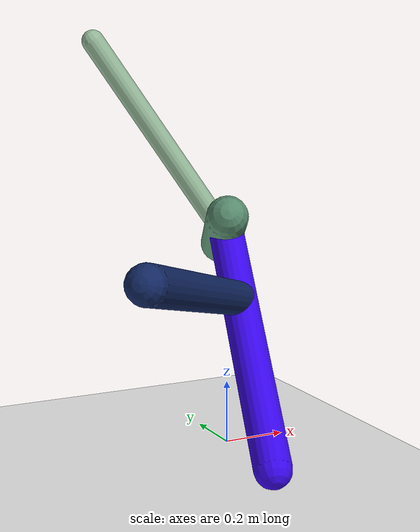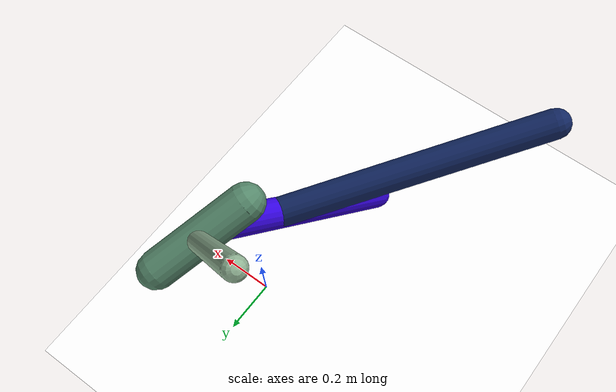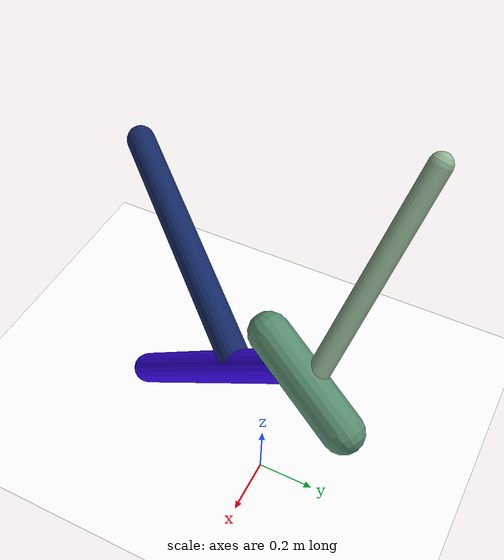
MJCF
<mujoco model="morphology">
  <option timestep="0.01"/>
  <default>
    <default class="/"/>
    <default class="0/"/>
    <default class="0/1/"/>
    <default class="0/2/"/>
    <default class="0/2/3/"/>
  </default>
  <asset>
    <texture name="texplane" type="2d" builtin="checker" rgb1="0.10000000000000001 0.20000000000000001 0.29999999999999999" rgb2="0.20000000000000001 0.29999999999999999 0.40000000000000002" width="300" height="300"/>
    <material name="MatPlane" class="/" texture="texplane" texrepeat="20 20" specular="1" shininess="1" reflectance="0.5"/>
  </asset>
  <worldbody>
    <light name="//unnamed_light_0" class="/" directional="true" pos="0 0 1.5" dir="0 0 -1.3" cutoff="100" exponent="1" diffuse="1 1 1" specular="0.10000000000000001 0.10000000000000001 0.10000000000000001"/>
    <geom name="ground" class="/" type="plane" size="15 15 0.5" material="MatPlane" rgba="1 1 1 1"/>
    <site name="body" class="/" size="9.9999999999999995e-07 9.9999999999999995e-07 9.9999999999999995e-07" pos="0 0 0.73234949111938474"/>
    <body pos="0 0 0.73234949111938474" name="0/">
      <freejoint name="0/"/>
      <geom name="0/geom" class="0/" type="capsule" contype="1" conaffinity="1" condim="3" size="0.067045377203035605" rgba="0.34615063962853987 0.54926414007162772 0.43389046966256839 1" friction="0.59999999999999998 0.10000000000000001 0.10000000000000001" fromto="0 0 0 0.13511609446524075 0.31142920468098678 -0.14181358877669759"/>
      <site name="0/end0" class="0/" size="0.0050000000000000001" pos="0.13511609446524075 0.31142920468098678 -0.14181358877669759"/>
      <site name="0/attach1" class="0/" size="9.9999999999999995e-07 9.9999999999999995e-07 9.9999999999999995e-07" pos="0.074739937198941064 0.17226814682510694 -0.078444679451962027"/>
      <body pos="0.074739937198941064 0.17226814682510694 -0.078444679451962027" name="0/1/">
        <joint name="0/1/joint/" class="0/" type="hinge" axis="0 1 0" limited="true" range="-59.401523576891151 59.401523576891151"/>
        <geom name="0/1/geom" class="0/1/" type="capsule" contype="1" conaffinity="1" condim="3" size="0.036030468195633179" rgba="0.58314021635106728 0.71915770214828001 0.59730044935544269 1" friction="0.59999999999999998 0.10000000000000001 0.10000000000000001" fromto="0 0 0 -0.38814292763351976 0.15865233571920467 0.61938824186486485"/>
        <site name="0/1/end1" class="0/1/" size="0.0050000000000000001" pos="-0.38814292763351976 0.15865233571920467 0.61938824186486485"/>
      </body>
      <site name="0/attach2" class="0/" size="9.9999999999999995e-07 9.9999999999999995e-07 9.9999999999999995e-07" pos="0.045231705605902991 0.10425459793640432 -0.047473770788381733"/>
      <body pos="0.045231705605902991 0.10425459793640432 -0.047473770788381733" name="0/2/">
        <joint name="0/2/joint/" class="0/" type="hinge" axis="0 0 1" limited="true" range="-37.175928599238567 37.175928599238567"/>
        <geom name="0/2/geom" class="0/2/" type="capsule" contype="1" conaffinity="1" condim="3" size="0.055802999208570084" rgba="0.2229889325136315 0.019620405844805067 0.92481045355813696 1" friction="0.59999999999999998 0.10000000000000001 0.10000000000000001" fromto="0 0 0 -0.18040574464340597 -0.64637937846378768 -0.58487573987322228"/>
        <site name="0/2/end2" class="0/2/" size="0.0050000000000000001" pos="-0.18040574464340597 -0.64637937846378768 -0.58487573987322228"/>
        <site name="0/2/attach3" class="0/2/" size="9.9999999999999995e-07 9.9999999999999995e-07 9.9999999999999995e-07" pos="-0.0591135867724445 -0.21179926144959635 -0.1916463517746253"/>
        <body pos="-0.0591135867724445 -0.21179926144959635 -0.1916463517746253" name="0/2/3/">
          <joint name="0/2/3/joint/" class="0/2/" type="hinge" axis="0.97924904029584925 -0.15027357054196683 -0.13597489134478591" limited="true" range="-45.673535317075888 45.673535317075888"/>
          <geom name="0/2/3/geom" class="0/2/3/" type="capsule" contype="1" conaffinity="1" condim="3" size="0.053419752545576613" rgba="0.074217199330818939 0.15707198028567071 0.38988402630880437 1" friction="0.59999999999999998 0.10000000000000001 0.10000000000000001" fromto="0 0 0 -0.63533998122500157 -0.73401082338932355 0.23569800686723652"/>
          <site name="0/2/3/end3" class="0/2/3/" size="0.0050000000000000001" pos="-0.63533998122500157 -0.73401082338932355 0.23569800686723652"/>
        </body>
      </body>
      <camera name="0/iso" class="0/" mode="trackcom" pos="-2.2999999999999998 -2.2999999999999998 1" xyaxes="0.45000000000000001 -0.45000000000000001 0 0.29999999999999999 0.14999999999999999 0.93999999999999995"/>
    </body>
  </worldbody>
  <actuator>
    <motor name="0/1/motor" class="0/1/" ctrllimited="true" ctrlrange="-1 1" gear="90" joint="0/1/joint/"/>
    <motor name="0/2/motor" class="0/2/" ctrllimited="true" ctrlrange="-1 1" gear="51" joint="0/2/joint/"/>
    <motor name="0/2/3/motor" class="0/2/3/" ctrllimited="true" ctrlrange="-1 1" gear="69" joint="0/2/3/joint/"/>
  </actuator>
  <sensor>
    <subtreelinvel name="velocity" body="0/"/>
  </sensor>
</mujoco>
